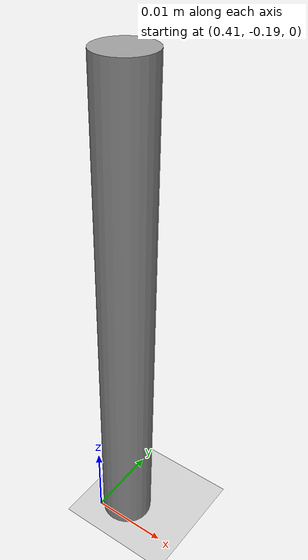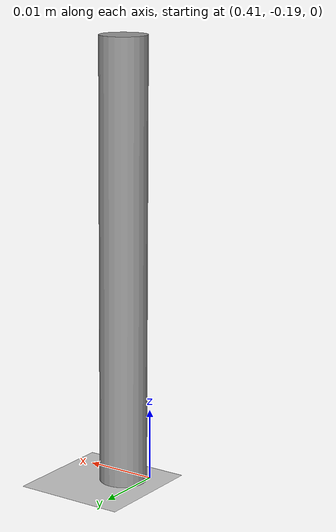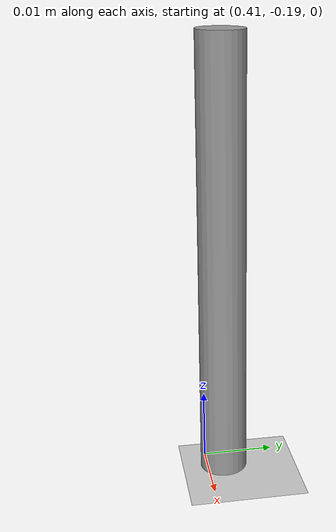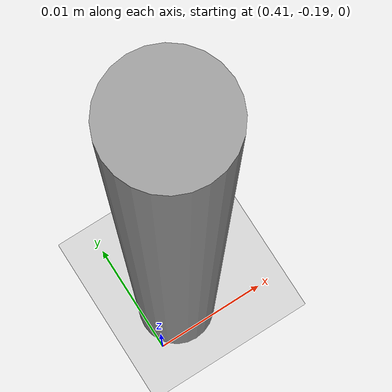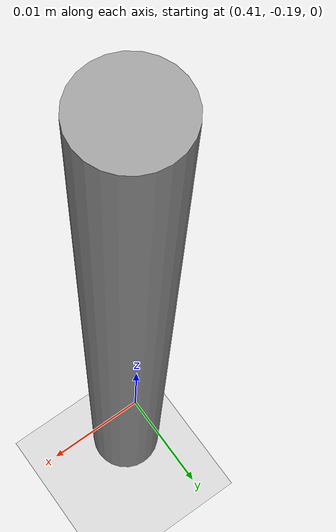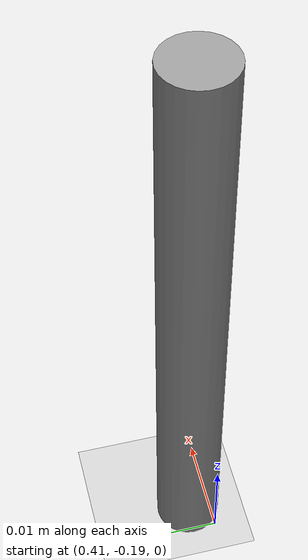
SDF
<sdf version="1.7">
 <world name="default">
  <light name="sun" type="directional">
   <pose>0 0 10 0 -0 0</pose>
   <diffuse>0.8 0.8 0.8 1</diffuse>
   <specular>0.2 0.2 0.2 1</specular>
   <attenuation>
    <range>1000</range>
    <constant>0.9</constant>
    <linear>0.01</linear>
    <quadratic>0.001</quadratic>
   </attenuation>
   <direction>-0.5 0.1 -0.9</direction>
   <spot><inner_angle>0</inner_angle><outer_angle>0</outer_angle><falloff>0</falloff></spot>
  </light>
  <model name="ground_plane">
   <static>1</static>
   <link name="link">
    <collision name="collision">
     <geometry><plane><normal>0 0 1</normal><size>100 100</size></plane></geometry>
     <surface><friction><ode><mu>100</mu><mu2>50</mu2></ode></friction></surface>
    </collision>
    <visual name="visual">
     <cast_shadows>0</cast_shadows>
     <geometry><plane><normal>0 0 1</normal><size>100 100</size></plane></geometry>
     <material>
      <script><uri>file://media/materials/scripts/gazebo.material</uri><name>Gazebo/Grey</name></script>
     </material>
    </visual>
   </link>
  </model>
  <gravity>0 0 -9.8</gravity>
  <magnetic_field>6e-06 2.3e-05 -4.2e-05</magnetic_field>
  <atmosphere type="adiabatic"/>
  <physics type="ode">
   <max_step_size>0.001</max_step_size>
   <real_time_factor>1</real_time_factor>
   <real_time_update_rate>1000</real_time_update_rate>
  </physics>
  <scene><ambient>0.4 0.4 0.4 1</ambient><background>0.7 0.7 0.7 1</background><shadows>1</shadows></scene>
  <audio><device>default</device></audio>
  <spherical_coordinates>
   <surface_model>EARTH_WGS84</surface_model>
   <latitude_deg>0</latitude_deg>
   <longitude_deg>0</longitude_deg>
   <elevation>0</elevation>
   <heading_deg>0</heading_deg>
  </spherical_coordinates>
  <model name="metal_peg">
   <link name="link">
    <pose>0 0 0.031 0 -0 0</pose>
    <inertial>
     <mass>0.0121</mass>
     <inertia>
      <ixx>3.90898e-06</ixx>
      <ixy>0</ixy>
      <ixz>0</ixz>
      <iyy>3.90898e-06</iyy>
      <iyz>0</iyz>
      <izz>6.58845e-08</izz>
     </inertia>
    </inertial>
    <collision name="collision">
     <geometry><cylinder><radius>0.0033</radius><length>0.062</length></cylinder></geometry>
     <surface>
      <contact>
       <poissons_ratio>0.305</poissons_ratio>
       <elastic_modulus>2e+11</elastic_modulus>
       <ode><kp>100000</kp><kd>100</kd><max_vel>100</max_vel><min_depth>0.001</min_depth></ode>
      </contact>
      <friction>
       <torsional>
        <coefficient>1</coefficient>
        <use_patch_radius>0</use_patch_radius>
        <surface_radius>0.01</surface_radius>
       </torsional>
      </friction>
     </surface>
    </collision>
    <visual name="visual">
     <geometry><cylinder><radius>0.0033</radius><length>0.062</length></cylinder></geometry>
     <material>
      <script><uri>file://media/materials/scripts/gazebo.material</uri><name>Gazebo/Grey</name></script>
     </material>
    </visual>
   </link>
   <pose>0.412895 -0.187663 -0.000191 -0.000276 0.000275 0</pose>
  </model>
 </world>
</sdf>
